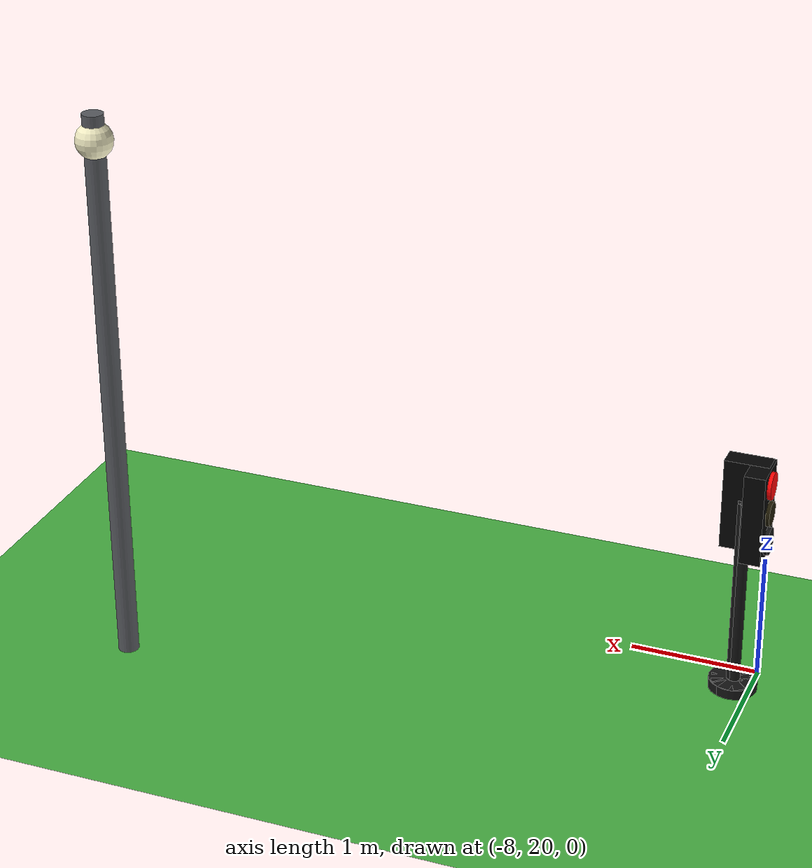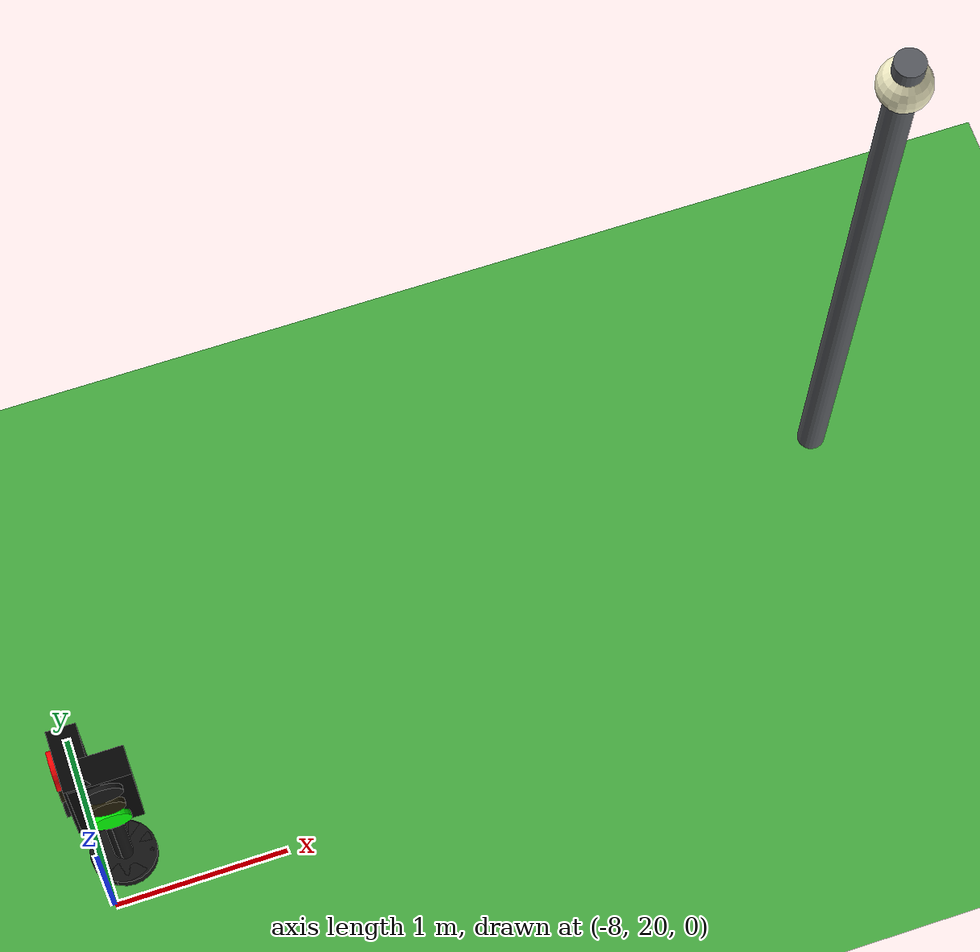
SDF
<sdf version="1.10">
 <world name="city_second">
  <model name="ground_plane">
   <static>true</static>
   <link name="link">
    <collision name="collision">
     <geometry><plane><normal>0 0 1</normal><size>300 300</size></plane></geometry>
    </collision>
    <visual name="visual">
     <geometry><plane><normal>0 0 1</normal><size>300 300</size></plane></geometry>
     <material>
      <ambient>0.280000001 0.689999998 0.25999999 1</ambient>
      <diffuse>0.280000001 0.689999998 0.25999999 1</diffuse>
      <specular>0.0299999993 0.0299999993 0.0299999993 1</specular>
     </material>
    </visual>
    <inertial>
     <mass>1</mass>
     <inertia><ixx>1</ixx><ixy>0</ixy><ixz>0</ixz><iyy>1</iyy><iyz>0</iyz><izz>1</izz></inertia>
    </inertial>
   </link>
  </model>
  <model name="lamp_1_2_15">
   <static>true</static>
   <pose>-3.3274400000000002 21.4406 2.2000000000000002 0 0 0</pose>
   <link name="link">
    <collision name="collision">
     <geometry>
      <cylinder><radius>0.080000000000000002</radius><length>4.4000000000000004</length></cylinder>
     </geometry>
    </collision>
    <visual name="pole">
     <geometry>
      <cylinder><radius>0.080000000000000002</radius><length>4.4000000000000004</length></cylinder>
     </geometry>
     <material>
      <ambient>0.349999994 0.360000014 0.379999995 1</ambient>
      <diffuse>0.349999994 0.360000014 0.379999995 1</diffuse>
      <specular>0.0299999993 0.0299999993 0.0299999993 1</specular>
     </material>
    </visual>
    <visual name="lamp_head">
     <pose>0 0 2 0 0 0</pose>
     <geometry><sphere><radius>0.14000000000000001</radius></sphere></geometry>
     <material>
      <ambient>0.959999979 0.939999998 0.779999971 1</ambient>
      <diffuse>0.959999979 0.939999998 0.779999971 1</diffuse>
      <specular>0.0299999993 0.0299999993 0.0299999993 1</specular>
     </material>
    </visual>
    <inertial>
     <mass>1</mass>
     <inertia><ixx>1</ixx><ixy>0</ixy><ixz>0</ixz><iyy>1</iyy><iyz>0</iyz><izz>1</izz></inertia>
    </inertial>
   </link>
  </model>
  <model name="simple_traffic_light_green_south_1_3_2">
   <static>true</static>
   <pose>-7.8629358100978832 20.257268512716777 0 0 0 -3.1415900000000754</pose>
   <link name="base">
    <pose>0 0 0.040000000000000001 0 0 0</pose>
    <collision name="collision">
     <geometry>
      <cylinder><radius>0.17999999999999999</radius><length>0.080000000000000002</length></cylinder>
     </geometry>
    </collision>
    <visual name="visual">
     <geometry>
      <cylinder><radius>0.17999999999999999</radius><length>0.080000000000000002</length></cylinder>
     </geometry>
     <material>
      <ambient>0.0799999982 0.0799999982 0.0799999982 1</ambient>
      <diffuse>0.0799999982 0.0799999982 0.0799999982 1</diffuse>
      <specular>0.150000006 0.150000006 0.150000006 1</specular>
      <emissive>0 0 0 1</emissive>
     </material>
    </visual>
    <inertial>
     <mass>1</mass>
     <inertia><ixx>1</ixx><ixy>0</ixy><ixz>0</ixz><iyy>1</iyy><iyz>0</iyz><izz>1</izz></inertia>
    </inertial>
   </link>
   <link name="pole">
    <pose>0 -3.1974423109204508e-14 0.80000000000000104 0 0 0</pose>
    <collision name="collision">
     <geometry>
      <cylinder><radius>0.044999999999999998</radius><length>1.6000000000000001</length></cylinder>
     </geometry>
    </collision>
    <visual name="visual">
     <geometry>
      <cylinder><radius>0.044999999999999998</radius><length>1.6000000000000001</length></cylinder>
     </geometry>
     <material>
      <ambient>0.0799999982 0.0799999982 0.0799999982 1</ambient>
      <diffuse>0.0799999982 0.0799999982 0.0799999982 1</diffuse>
      <specular>0.150000006 0.150000006 0.150000006 1</specular>
      <emissive>0 0 0 1</emissive>
     </material>
    </visual>
    <inertial>
     <mass>1</mass>
     <inertia><ixx>1</ixx><ixy>0</ixy><ixz>0</ixz><iyy>1</iyy><iyz>0</iyz><izz>1</izz></inertia>
    </inertial>
   </link>
   <link name="signal_box">
    <pose>0 0.089999999999935909 1.550000000000002 0 0 0</pose>
    <collision name="collision">
     <geometry><box><size>0.34000000000000002 0.16 0.71999999999999997</size></box></geometry>
    </collision>
    <visual name="visual">
     <geometry><box><size>0.34000000000000002 0.16 0.71999999999999997</size></box></geometry>
     <material>
      <ambient>0.0199999996 0.0199999996 0.0199999996 1</ambient>
      <diffuse>0.0199999996 0.0199999996 0.0199999996 1</diffuse>
      <specular>0.150000006 0.150000006 0.150000006 1</specular>
      <emissive>0 0 0 1</emissive>
     </material>
    </visual>
    <inertial>
     <mass>1</mass>
     <inertia><ixx>1</ixx><ixy>0</ixy><ixz>0</ixz><iyy>1</iyy><iyz>0</iyz><izz>1</izz></inertia>
    </inertial>
   </link>
   <link name="red_lens">
    <pose>0 0.18099999999996541 1.78 1.5707963267999998 1.2475048931562623e-16 -1.2475078878636004e-16</pose>
    <collision name="collision">
     <geometry><cylinder><radius>0.105</radius><length>0.035000000000000003</length></cylinder></geometry>
    </collision>
    <visual name="visual">
     <geometry><cylinder><radius>0.105</radius><length>0.035000000000000003</length></cylinder></geometry>
     <material>
      <ambient>0.0799999982 0.0799999982 0.0799999982 1</ambient>
      <diffuse>0.0799999982 0.0799999982 0.0799999982 1</diffuse>
      <specular>0.150000006 0.150000006 0.150000006 1</specular>
      <emissive>0 0 0 1</emissive>
     </material>
    </visual>
    <inertial>
     <mass>1</mass>
     <inertia><ixx>1</ixx><ixy>0</ixy><ixz>0</ixz><iyy>1</iyy><iyz>0</iyz><izz>1</izz></inertia>
    </inertial>
   </link>
   <link name="yellow_lens">
    <pose>-7.9936057773011271e-15 0.18199999999999861 1.550000000000002 1.5707963267999998 1.2475048931562623e-16 -1.2475078878636004e-16</pose>
    <collision name="collision">
     <geometry>
      <cylinder><radius>0.095000000000000001</radius><length>0.035000000000000003</length></cylinder>
     </geometry>
    </collision>
    <visual name="visual">
     <geometry>
      <cylinder><radius>0.095000000000000001</radius><length>0.035000000000000003</length></cylinder>
     </geometry>
     <material>
      <ambient>0.119999997 0.100000001 0.0199999996 1</ambient>
      <diffuse>0.119999997 0.100000001 0.0199999996 1</diffuse>
      <specular>0.150000006 0.150000006 0.150000006 1</specular>
      <emissive>0 0 0 1</emissive>
     </material>
    </visual>
    <inertial>
     <mass>1</mass>
     <inertia><ixx>1</ixx><ixy>0</ixy><ixz>0</ixz><iyy>1</iyy><iyz>0</iyz><izz>1</izz></inertia>
    </inertial>
   </link>
   <link name="green_lens">
    <pose>0 0.18299999999993588 1.3200000000000021 1.5707963267999998 1.2475048931562623e-16 -1.2475078878636004e-16</pose>
    <collision name="collision">
     <geometry><cylinder><radius>0.105</radius><length>0.035000000000000003</length></cylinder></geometry>
    </collision>
    <visual name="visual">
     <geometry><cylinder><radius>0.105</radius><length>0.035000000000000003</length></cylinder></geometry>
     <material>
      <ambient>0.0199999996 1 0.0199999996 1</ambient>
      <diffuse>0.0199999996 1 0.0199999996 1</diffuse>
      <specular>0.150000006 0.150000006 0.150000006 1</specular>
      <emissive>0.0199999996 1 0.0199999996 1</emissive>
     </material>
    </visual>
    <inertial>
     <mass>1</mass>
     <inertia><ixx>1</ixx><ixy>0</ixy><ixz>0</ixz><iyy>1</iyy><iyz>0</iyz><izz>1</izz></inertia>
    </inertial>
   </link>
  </model>
  <model name="simple_traffic_light_red_west_2_1">
   <static>true</static>
   <pose>-7.8804206978780122 20.265613883144834 -3.4694469519536142e-17 0 0 1.5707999672671753</pose>
   <link name="base">
    <pose>0 0 0.040000000000000001 0 0 0</pose>
    <collision name="collision">
     <geometry>
      <cylinder><radius>0.17999999999999999</radius><length>0.080000000000000002</length></cylinder>
     </geometry>
    </collision>
    <visual name="visual">
     <geometry>
      <cylinder><radius>0.17999999999999999</radius><length>0.080000000000000002</length></cylinder>
     </geometry>
     <material>
      <ambient>0.0799999982 0.0799999982 0.0799999982 1</ambient>
      <diffuse>0.0799999982 0.0799999982 0.0799999982 1</diffuse>
      <specular>0.150000006 0.150000006 0.150000006 1</specular>
      <emissive>0 0 0 1</emissive>
     </material>
    </visual>
    <inertial>
     <mass>1</mass>
     <inertia><ixx>1</ixx><ixy>0</ixy><ixz>0</ixz><iyy>1</iyy><iyz>0</iyz><izz>1</izz></inertia>
    </inertial>
   </link>
   <link name="pole">
    <pose>1.4210854715202004e-14 -1.2434497875801753e-14 0.80000000000000004 0 0 1.1102230246251565e-16</pose>
    <collision name="collision">
     <geometry>
      <cylinder><radius>0.044999999999999998</radius><length>1.6000000000000001</length></cylinder>
     </geometry>
    </collision>
    <visual name="visual">
     <geometry>
      <cylinder><radius>0.044999999999999998</radius><length>1.6000000000000001</length></cylinder>
     </geometry>
     <material>
      <ambient>0.0799999982 0.0799999982 0.0799999982 1</ambient>
      <diffuse>0.0799999982 0.0799999982 0.0799999982 1</diffuse>
      <specular>0.150000006 0.150000006 0.150000006 1</specular>
      <emissive>0 0 0 1</emissive>
     </material>
    </visual>
    <inertial>
     <mass>1</mass>
     <inertia><ixx>1</ixx><ixy>0</ixy><ixz>0</ixz><iyy>1</iyy><iyz>0</iyz><izz>1</izz></inertia>
    </inertial>
   </link>
   <link name="signal_box">
    <pose>2.1316282072803006e-14 0.089999999999994529 1.5500000000000003 0 0 1.1102230246251565e-16</pose>
    <collision name="collision">
     <geometry><box><size>0.34000000000000002 0.16 0.71999999999999997</size></box></geometry>
    </collision>
    <visual name="visual">
     <geometry><box><size>0.34000000000000002 0.16 0.71999999999999997</size></box></geometry>
     <material>
      <ambient>0.0199999996 0.0199999996 0.0199999996 1</ambient>
      <diffuse>0.0199999996 0.0199999996 0.0199999996 1</diffuse>
      <specular>0.150000006 0.150000006 0.150000006 1</specular>
      <emissive>0 0 0 1</emissive>
     </material>
    </visual>
    <inertial>
     <mass>1</mass>
     <inertia><ixx>1</ixx><ixy>0</ixy><ixz>0</ixz><iyy>1</iyy><iyz>0</iyz><izz>1</izz></inertia>
    </inertial>
   </link>
   <link name="red_lens">
    <pose>3.5527136788005009e-15 0.18099999999999028 1.7800000000000002 1.5707963268000005 7.8504622949614379e-17 -6.0448559659323335e-15</pose>
    <collision name="collision">
     <geometry><cylinder><radius>0.105</radius><length>0.035000000000000003</length></cylinder></geometry>
    </collision>
    <visual name="visual">
     <geometry><cylinder><radius>0.105</radius><length>0.035000000000000003</length></cylinder></geometry>
     <material>
      <ambient>1 0.0199999996 0.0199999996 1</ambient>
      <diffuse>1 0.0199999996 0.0199999996 1</diffuse>
      <specular>0.150000006 0.150000006 0.150000006 1</specular>
      <emissive>1 0.0199999996 0.0199999996 1</emissive>
     </material>
    </visual>
    <inertial>
     <mass>1</mass>
     <inertia><ixx>1</ixx><ixy>0</ixy><ixz>0</ixz><iyy>1</iyy><iyz>0</iyz><izz>1</izz></inertia>
    </inertial>
   </link>
   <link name="yellow_lens">
    <pose>0 0.1819999999999844 1.5500000000000003 1.5707963268000005 7.8504622949614379e-17 -6.0448559659323335e-15</pose>
    <collision name="collision">
     <geometry>
      <cylinder><radius>0.095000000000000001</radius><length>0.035000000000000003</length></cylinder>
     </geometry>
    </collision>
    <visual name="visual">
     <geometry>
      <cylinder><radius>0.095000000000000001</radius><length>0.035000000000000003</length></cylinder>
     </geometry>
     <material>
      <ambient>0.119999997 0.100000001 0.0199999996 1</ambient>
      <diffuse>0.119999997 0.100000001 0.0199999996 1</diffuse>
      <specular>0.150000006 0.150000006 0.150000006 1</specular>
      <emissive>0 0 0 1</emissive>
     </material>
    </visual>
    <inertial>
     <mass>1</mass>
     <inertia><ixx>1</ixx><ixy>0</ixy><ixz>0</ixz><iyy>1</iyy><iyz>0</iyz><izz>1</izz></inertia>
    </inertial>
   </link>
   <link name="green_lens">
    <pose>2.4868995751603507e-14 0.18299999999999272 1.3199999999999998 1.5707963268000005 7.8504622949614379e-17 -6.0448559659323335e-15</pose>
    <collision name="collision">
     <geometry><cylinder><radius>0.105</radius><length>0.035000000000000003</length></cylinder></geometry>
    </collision>
    <visual name="visual">
     <geometry><cylinder><radius>0.105</radius><length>0.035000000000000003</length></cylinder></geometry>
     <material>
      <ambient>0.0799999982 0.0799999982 0.0799999982 1</ambient>
      <diffuse>0.0799999982 0.0799999982 0.0799999982 1</diffuse>
      <specular>0.150000006 0.150000006 0.150000006 1</specular>
      <emissive>0 0 0 1</emissive>
     </material>
    </visual>
    <inertial>
     <mass>1</mass>
     <inertia><ixx>1</ixx><ixy>0</ixy><ixz>0</ixz><iyy>1</iyy><iyz>0</iyz><izz>1</izz></inertia>
    </inertial>
   </link>
  </model>
 </world>
</sdf>
